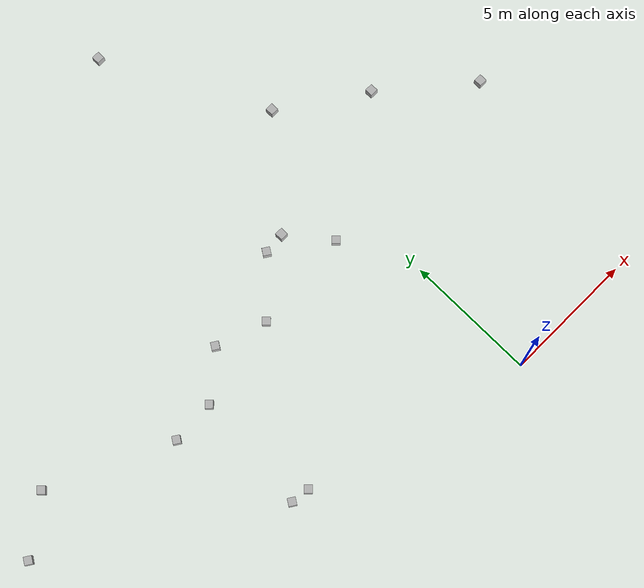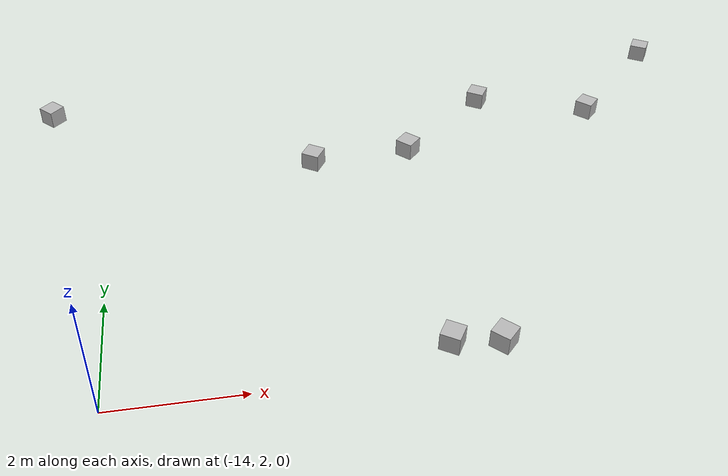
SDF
<?xml version="1.0"?>
<sdf version="1.7">
    <world name="default">
        <scene>
          <shadows>0</shadows>
        </scene>
        <model name="cube1">
            <pose>0 0 0 0 0 1</pose>
            <include>
                <uri>model://cube</uri>
            </include>
        </model>
        <model name="cube2">
            <pose>0 -2 0 0 0 0.785</pose>
            <include>
                <uri>model://cube</uri>
            </include>
        </model>
        <model name="cube3">
            <pose>0 0 2 0 0 0</pose>
            <include>
              <uri>model://cube</uri>
            </include>
          </model>
        <model name="camera_model">
            <pose>2 0 0 0 0 3.14</pose>
            <static>true</static>
            <link name="camera_link">
                <sensor type="depth" name="camera1">
                    <update_rate>50</update_rate>
                    <visualize>true</visualize>
                    <camera>
                        <horizontal_fov>1.92</horizontal_fov>
                        <image>
                            <width>640</width>
                            <height>480</height>
                            <format>B8G8R8</format>
                        </image>
                        <depth_camera></depth_camera>
                        <clip>
                            <near>0.02</near>
                            <far>300</far>
                        </clip>
                        <noise>
                            <type>gaussian</type>

                            <mean>0.0</mean>
                            <stddev>0.007</stddev>
                        </noise>
                    </camera>
                    <plugin name="gz::sim::systems::Sensors" filename="gz-sim-sensors-system">
                        <ros>
                            <namespace>steelhead/gazebo_drivers</namespace>
                        </ros>
                        <camera_name>front_camera</camera_name>
                        <min_depth>0.1</min_depth>
                        <max_depth>500</max_depth>
                    </plugin>
                </sensor>
            </link>
        </model>
        <grid>0</grid>
    </world>
</sdf>

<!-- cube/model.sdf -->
<sdf version="1.5">
    <model name="cube">
        <static>true</static>
        <link name="link">
            <collision name="collision1">
                <pose>0 12.5 0.1 0 0 0</pose>
                <geometry>
                    <mesh>
                        <uri>model://cube/meshes/cube.dae</uri>
                    </mesh>
                </geometry>
            </collision>
            <visual name="visual1">

              <pose>0 12.5 0.1 0 0 0</pose>
              <geometry>
              <mesh>
                 <uri>model://cube/meshes/cube.dae</uri>
              </mesh>
              </geometry>

              <material>
                  <script>
                      <uri>model://cube/materials/scripts</uri>
                      <uri>model://cube/materials/textures</uri>
                      <name>cubeMat/Diffuse</name>
                  </script>
              </material>
             </visual>

             <collision name="collision2">
                <pose>3 10.5 0.1 0 0 0</pose>
                <geometry>
                    <mesh>
                        <uri>model://cube/meshes/cube.dae</uri>
                    </mesh>
                </geometry>
            </collision>
            <visual name="visual2">

              <pose>3 10.5 0.1 0 0 0</pose>
              <geometry>
              <mesh>
                 <uri>model://cube/meshes/cube.dae</uri>
              </mesh>
              </geometry>

              <material>
                  <script>
                      <uri>model://cube/materials/scripts</uri>
                      <uri>model://cube/materials/textures</uri>
                      <name>cubeMat/Diffuse</name>
                  </script>
              </material>
             </visual>

             <collision name="collision3">
                <pose>-3 9 0.1 0 0 0</pose>
                <geometry>
                    <mesh>
                        <uri>model://cube/meshes/cube.dae</uri>
                    </mesh>
                </geometry>
            </collision>
            <visual name="visual3">

              <pose>-3 9 0.1 0 0 0</pose>
              <geometry>
              <mesh>
                 <uri>model://cube/meshes/cube.dae</uri>
              </mesh>
              </geometry>

              <material>
                  <script>
                      <uri>model://cube/materials/scripts</uri>
                      <uri>model://cube/materials/textures</uri>
                      <name>cubeMat/Diffuse</name>
                  </script>
              </material>
             </visual>

             <collision name="collision4">
                <pose>6 8 0.1 0 0 0</pose>
                <geometry>
                    <mesh>
                        <uri>model://cube/meshes/cube.dae</uri>
                    </mesh>
                </geometry>
            </collision>
            <visual name="visual4">

              <pose>6 8 0.1 0 0 0</pose>
              <geometry>
              <mesh>
                 <uri>model://cube/meshes/cube.dae</uri>
              </mesh>
              </geometry>

              <material>
                  <script>
                      <uri>model://cube/materials/scripts</uri>
                      <uri>model://cube/materials/textures</uri>
                      <name>cubeMat/Diffuse</name>
                  </script>
              </material>
             </visual>

             <collision name="collision5">
                <pose>-3 18.3 0.1 0 0 0</pose>
                <geometry>
                    <mesh>
                        <uri>model://cube/meshes/cube.dae</uri>
                    </mesh>
                </geometry>
            </collision>
            <visual name="visual5">

              <pose>-3 18.3 0.1 0 0 0</pose>
              <geometry>
              <mesh>
                 <uri>model://cube/meshes/cube.dae</uri>
              </mesh>
              </geometry>

              <material>
                  <script>
                      <uri>model://cube/materials/scripts</uri>
                      <uri>model://cube/materials/textures</uri>
                      <name>cubeMat/Diffuse</name>
                  </script>
              </material>
             </visual>
        </link>
    </model>
</sdf>
